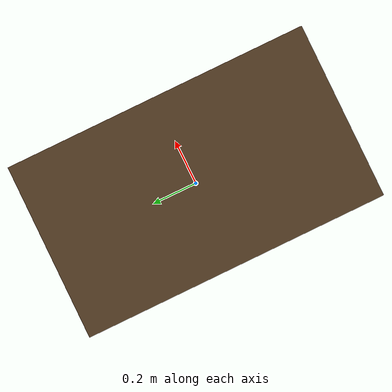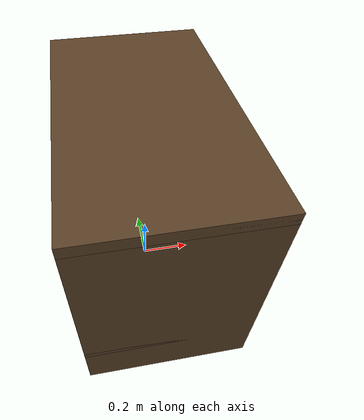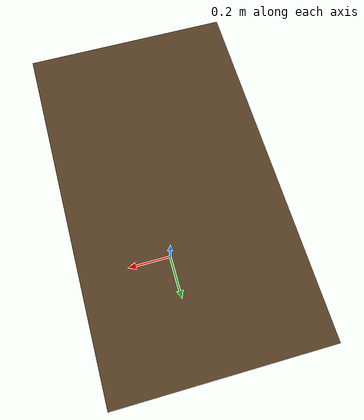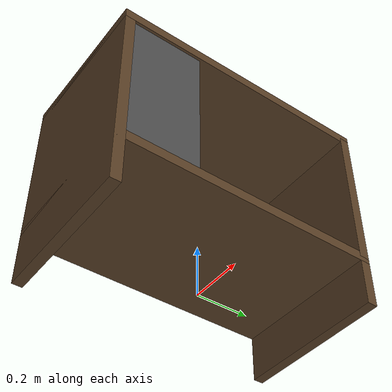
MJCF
<mujoco model="cabinet_quarter_closed">
  <compiler angle="radian"/>

  <asset>
    <texture type="2d" name="tex_cabinet_quarter_closed" file="light_wood_v3.png" />
    <material name="mat_cabinet_quarter_closed" texture="tex_cabinet_quarter_closed" specular="0.5" shininess="0.5" rgba="0.5 0.5 0.5 1" />
  </asset>

  <worldbody>
    <body name="body_cabinet_quarter_closed" pos="0 0 0">
      <!-- Cabinet body  -->
      <geom type="box" size="0.3 0.52 0.02" pos="0.0 0.0 0.2" material="mat_cabinet_quarter_closed" />
      <geom type="box" size="0.3 0.52 0.02" pos="0.0 0.0 0.8" material="mat_cabinet_quarter_closed" />
      <geom type="box" size="0.02 0.5 0.3" pos="-0.28 0.0 0.5" material="mat_cabinet_quarter_closed"/>
      <geom type="box" size="0.3 0.02 0.4" pos="0.0 0.5 0.4" material="mat_cabinet_quarter_closed" />
      <geom type="box" size="0.3 0.02 0.4" pos="0.0 -0.5 0.4" material="mat_cabinet_quarter_closed" />

      <!-- Cabinet door -->
      <geom type="box" size="0.01 0.15 0.3" pos="0.28 -0.35 0.5" rgba="0.3 0.3 0.3 1" />
    </body>
  </worldbody>

</mujoco>
